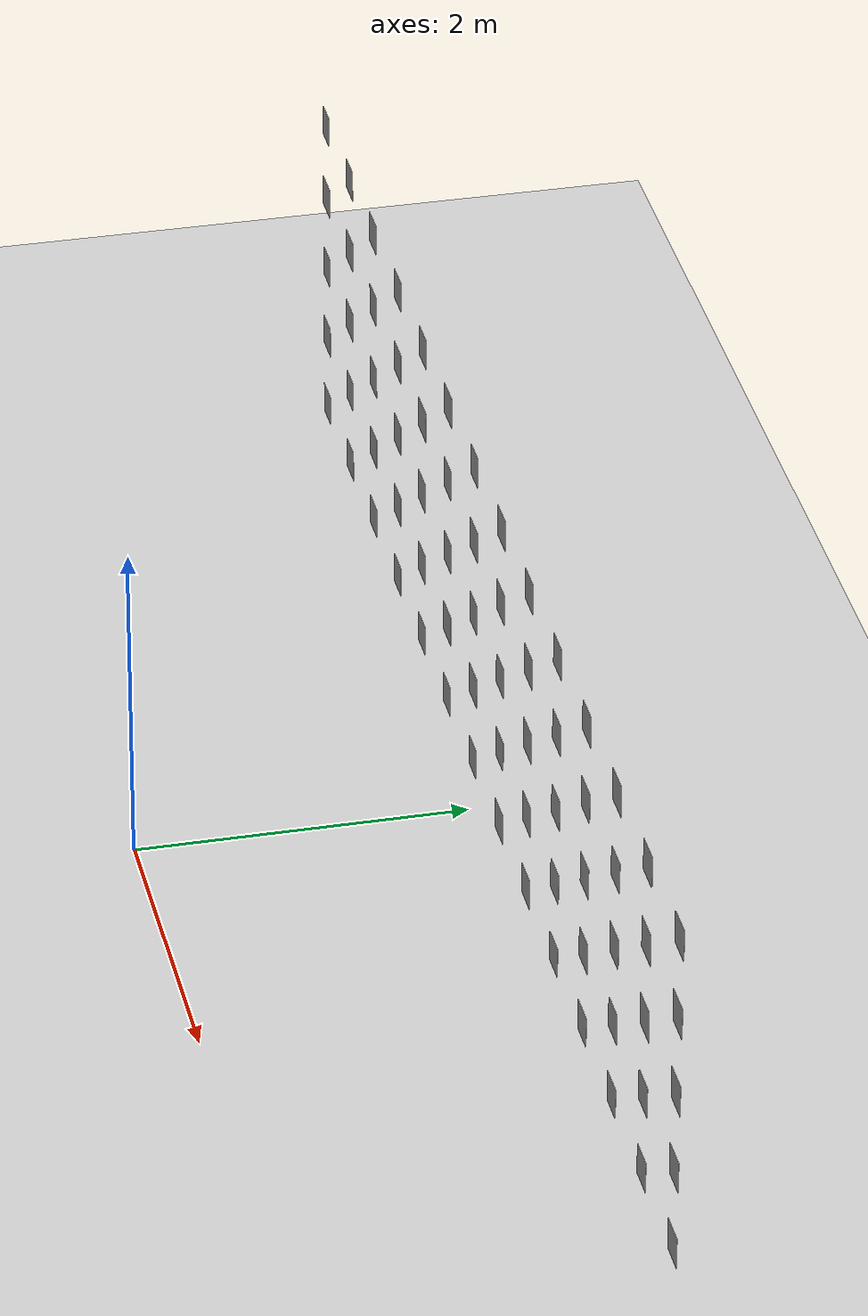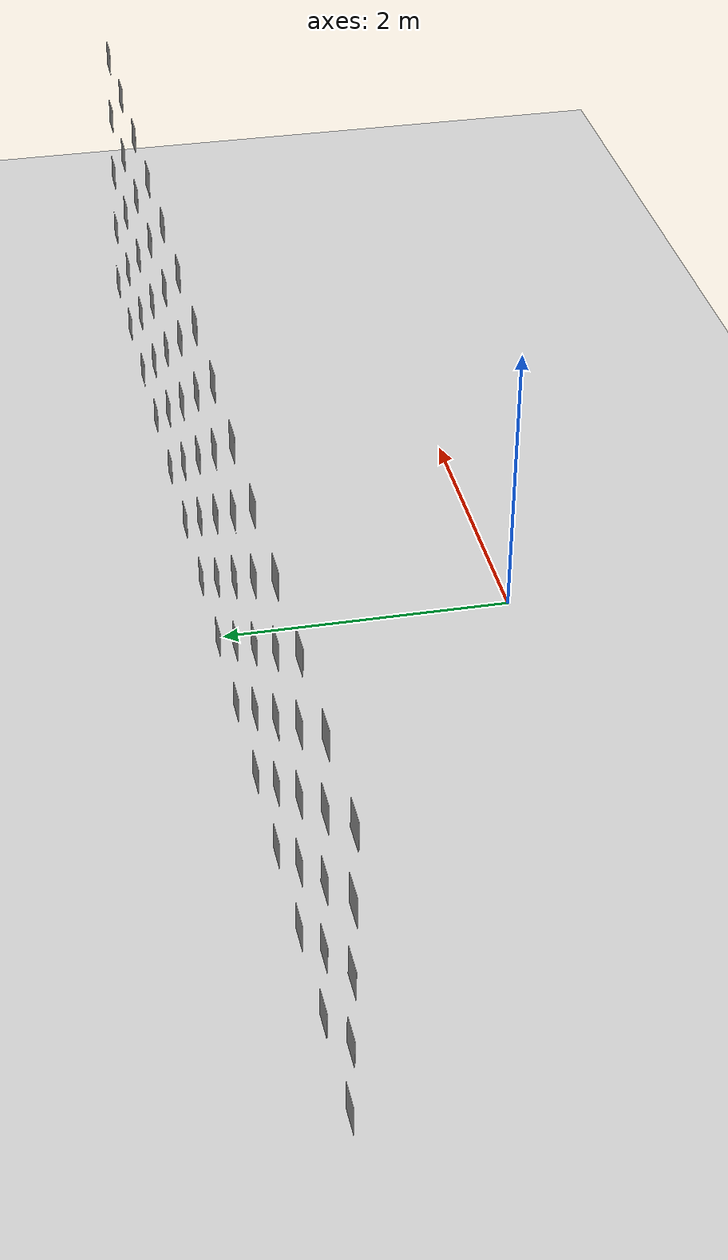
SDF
<sdf version="1.6">
 <world name="default">
  <model name="ground_plane">
   <static>1</static>
   <link name="link">
    <collision name="collision">
     <geometry><plane><normal>0 0 1</normal><size>100 100</size></plane></geometry>
     <surface><friction><ode><mu>100</mu><mu2>50</mu2></ode></friction></surface>
    </collision>
    <visual name="visual">
     <cast_shadows>0</cast_shadows>
     <geometry><plane><normal>0 0 1</normal><size>100 100</size></plane></geometry>
     <material>
      <script><uri>file://media/materials/scripts/gazebo.material</uri><name>Gazebo/Grey</name></script>
     </material>
    </visual>
   </link>
  </model>
  <model name="home1_tag3">
   <model name="aruco100">
    <static>1</static>
    <link name="link">
     <pose>0 0 0.1 0 -0 0</pose>
     <collision name="collision"><geometry><box><size>0.2 0.001 0.2</size></box></geometry></collision>
     <visual name="visual">
      <cast_shadows>0</cast_shadows>
      <geometry><box><size>0.2 0.001 0.2</size></box></geometry>
      <material>
       <script>
        <uri>model://aruco100/materials/scripts</uri>
        <uri>model://aruco100/materials/textures</uri>
        <name>vrc/aruco100</name>
       </script>
      </material>
     </visual>
    </link>
    <pose>0 2 0.1 0 -0 0</pose>
   </model>
   <model name="aruco101">
    <static>1</static>
    <link name="link">
     <pose>0 0 0.1 0 -0 0</pose>
     <collision name="collision"><geometry><box><size>0.2 0.001 0.2</size></box></geometry></collision>
     <visual name="visual">
      <cast_shadows>0</cast_shadows>
      <geometry><box><size>0.2 0.001 0.2</size></box></geometry>
      <material>
       <script>
        <uri>model://aruco101/materials/scripts</uri>
        <uri>model://aruco101/materials/textures</uri>
        <name>vrc/aruco101</name>
       </script>
      </material>
     </visual>
    </link>
    <pose>0.7 2 0.1 0 -0 0</pose>
   </model>
   <model name="aruco102">
    <static>1</static>
    <link name="link">
     <pose>0 0 0.1 0 -0 0</pose>
     <collision name="collision"><geometry><box><size>0.2 0.001 0.2</size></box></geometry></collision>
     <visual name="visual">
      <cast_shadows>0</cast_shadows>
      <geometry><box><size>0.2 0.001 0.2</size></box></geometry>
      <material>
       <script>
        <uri>model://aruco102/materials/scripts</uri>
        <uri>model://aruco102/materials/textures</uri>
        <name>vrc/aruco102</name>
       </script>
      </material>
     </visual>
    </link>
    <pose>1.4 2 0.1 0 -0 0</pose>
   </model>
   <model name="aruco103">
    <static>1</static>
    <link name="link">
     <pose>0 0 0.1 0 -0 0</pose>
     <collision name="collision"><geometry><box><size>0.2 0.001 0.2</size></box></geometry></collision>
     <visual name="visual">
      <cast_shadows>0</cast_shadows>
      <geometry><box><size>0.2 0.001 0.2</size></box></geometry>
      <material>
       <script>
        <uri>model://aruco103/materials/scripts</uri>
        <uri>model://aruco103/materials/textures</uri>
        <name>vrc/aruco103</name>
       </script>
      </material>
     </visual>
    </link>
    <pose>2.1 2 0.1 0 -0 0</pose>
   </model>
   <model name="aruco104">
    <static>1</static>
    <link name="link">
     <pose>0 0 0.1 0 -0 0</pose>
     <collision name="collision"><geometry><box><size>0.2 0.001 0.2</size></box></geometry></collision>
     <visual name="visual">
      <cast_shadows>0</cast_shadows>
      <geometry><box><size>0.2 0.001 0.2</size></box></geometry>
      <material>
       <script>
        <uri>model://aruco104/materials/scripts</uri>
        <uri>model://aruco104/materials/textures</uri>
        <name>vrc/aruco104</name>
       </script>
      </material>
     </visual>
    </link>
    <pose>2.8 2 0.1 0 -0 0</pose>
   </model>
   <model name="aruco105">
    <static>1</static>
    <link name="link">
     <pose>0 0 0.1 0 -0 0</pose>
     <collision name="collision"><geometry><box><size>0.2 0.001 0.2</size></box></geometry></collision>
     <visual name="visual">
      <cast_shadows>0</cast_shadows>
      <geometry><box><size>0.2 0.001 0.2</size></box></geometry>
      <material>
       <script>
        <uri>model://aruco105/materials/scripts</uri>
        <uri>model://aruco105/materials/textures</uri>
        <name>vrc/aruco105</name>
       </script>
      </material>
     </visual>
    </link>
    <pose>3.5 2 0.1 0 -0 0</pose>
   </model>
   <model name="aruco106">
    <static>1</static>
    <link name="link">
     <pose>0 0 0.1 0 -0 0</pose>
     <collision name="collision"><geometry><box><size>0.2 0.001 0.2</size></box></geometry></collision>
     <visual name="visual">
      <cast_shadows>0</cast_shadows>
      <geometry><box><size>0.2 0.001 0.2</size></box></geometry>
      <material>
       <script>
        <uri>model://aruco106/materials/scripts</uri>
        <uri>model://aruco106/materials/textures</uri>
        <name>vrc/aruco106</name>
       </script>
      </material>
     </visual>
    </link>
    <pose>4.2 2 0.1 0 -0 0</pose>
   </model>
   <model name="aruco107">
    <static>1</static>
    <link name="link">
     <pose>0 0 0.1 0 -0 0</pose>
     <collision name="collision"><geometry><box><size>0.2 0.001 0.2</size></box></geometry></collision>
     <visual name="visual">
      <cast_shadows>0</cast_shadows>
      <geometry><box><size>0.2 0.001 0.2</size></box></geometry>
      <material>
       <script>
        <uri>model://aruco107/materials/scripts</uri>
        <uri>model://aruco107/materials/textures</uri>
        <name>vrc/aruco107</name>
       </script>
      </material>
     </visual>
    </link>
    <pose>4.9 2 0.1 0 -0 0</pose>
   </model>
   <model name="aruco108">
    <static>1</static>
    <link name="link">
     <pose>0 0 0.1 0 -0 0</pose>
     <collision name="collision"><geometry><box><size>0.2 0.001 0.2</size></box></geometry></collision>
     <visual name="visual">
      <cast_shadows>0</cast_shadows>
      <geometry><box><size>0.2 0.001 0.2</size></box></geometry>
      <material>
       <script>
        <uri>model://aruco108/materials/scripts</uri>
        <uri>model://aruco108/materials/textures</uri>
        <name>vrc/aruco108</name>
       </script>
      </material>
     </visual>
    </link>
    <pose>5.6 2 0.1 0 -0 0</pose>
   </model>
   <model name="aruco109">
    <static>1</static>
    <link name="link">
     <pose>0 0 0.1 0 -0 0</pose>
     <collision name="collision"><geometry><box><size>0.2 0.001 0.2</size></box></geometry></collision>
     <visual name="visual">
      <cast_shadows>0</cast_shadows>
      <geometry><box><size>0.2 0.001 0.2</size></box></geometry>
      <material>
       <script>
        <uri>model://aruco109/materials/scripts</uri>
        <uri>model://aruco109/materials/textures</uri>
        <name>vrc/aruco109</name>
       </script>
      </material>
     </visual>
    </link>
    <pose>6.3 2 0.1 0 -0 0</pose>
   </model>
   <model name="aruco110">
    <static>1</static>
    <link name="link">
     <pose>0 0 0.1 0 -0 0</pose>
     <collision name="collision"><geometry><box><size>0.2 0.001 0.2</size></box></geometry></collision>
     <visual name="visual">
      <cast_shadows>0</cast_shadows>
      <geometry><box><size>0.2 0.001 0.2</size></box></geometry>
      <material>
       <script>
        <uri>model://aruco110/materials/scripts</uri>
        <uri>model://aruco110/materials/textures</uri>
        <name>vrc/aruco110</name>
       </script>
      </material>
     </visual>
    </link>
    <pose>7 2 0.1 0 -0 0</pose>
   </model>
   <model name="aruco111">
    <static>1</static>
    <link name="link">
     <pose>0 0 0.1 0 -0 0</pose>
     <collision name="collision"><geometry><box><size>0.2 0.001 0.2</size></box></geometry></collision>
     <visual name="visual">
      <cast_shadows>0</cast_shadows>
      <geometry><box><size>0.2 0.001 0.2</size></box></geometry>
      <material>
       <script>
        <uri>model://aruco111/materials/scripts</uri>
        <uri>model://aruco111/materials/textures</uri>
        <name>vrc/aruco111</name>
       </script>
      </material>
     </visual>
    </link>
    <pose>7.7 2 0.1 0 -0 0</pose>
   </model>
   <model name="aruco112">
    <static>1</static>
    <link name="link">
     <pose>0 0 0.1 0 -0 0</pose>
     <collision name="collision"><geometry><box><size>0.2 0.001 0.2</size></box></geometry></collision>
     <visual name="visual">
      <cast_shadows>0</cast_shadows>
      <geometry><box><size>0.2 0.001 0.2</size></box></geometry>
      <material>
       <script>
        <uri>model://aruco112/materials/scripts</uri>
        <uri>model://aruco112/materials/textures</uri>
        <name>vrc/aruco112</name>
       </script>
      </material>
     </visual>
    </link>
    <pose>8.4 2 0.1 0 -0 0</pose>
   </model>
   <model name="aruco113">
    <static>1</static>
    <link name="link">
     <pose>0 0 0.1 0 -0 0</pose>
     <collision name="collision"><geometry><box><size>0.2 0.001 0.2</size></box></geometry></collision>
     <visual name="visual">
      <cast_shadows>0</cast_shadows>
      <geometry><box><size>0.2 0.001 0.2</size></box></geometry>
      <material>
       <script>
        <uri>model://aruco113/materials/scripts</uri>
        <uri>model://aruco113/materials/textures</uri>
        <name>vrc/aruco113</name>
       </script>
      </material>
     </visual>
    </link>
    <pose>9.1 2 0.1 0 -0 0</pose>
   </model>
   <model name="aruco114">
    <static>1</static>
    <link name="link">
     <pose>0 0 0.1 0 -0 0</pose>
     <collision name="collision"><geometry><box><size>0.2 0.001 0.2</size></box></geometry></collision>
     <visual name="visual">
      <cast_shadows>0</cast_shadows>
      <geometry><box><size>0.2 0.001 0.2</size></box></geometry>
      <material>
       <script>
        <uri>model://aruco114/materials/scripts</uri>
        <uri>model://aruco114/materials/textures</uri>
        <name>vrc/aruco114</name>
       </script>
      </material>
     </visual>
    </link>
    <pose>0 2 0.6 0 -0 0</pose>
   </model>
   <model name="aruco115">
    <static>1</static>
    <link name="link">
     <pose>0 0 0.1 0 -0 0</pose>
     <collision name="collision"><geometry><box><size>0.2 0.001 0.2</size></box></geometry></collision>
     <visual name="visual">
      <cast_shadows>0</cast_shadows>
      <geometry><box><size>0.2 0.001 0.2</size></box></geometry>
      <material>
       <script>
        <uri>model://aruco115/materials/scripts</uri>
        <uri>model://aruco115/materials/textures</uri>
        <name>vrc/aruco115</name>
       </script>
      </material>
     </visual>
    </link>
    <pose>0.7 2 0.6 0 -0 0</pose>
   </model>
   <model name="aruco116">
    <static>1</static>
    <link name="link">
     <pose>0 0 0.1 0 -0 0</pose>
     <collision name="collision"><geometry><box><size>0.2 0.001 0.2</size></box></geometry></collision>
     <visual name="visual">
      <cast_shadows>0</cast_shadows>
      <geometry><box><size>0.2 0.001 0.2</size></box></geometry>
      <material>
       <script>
        <uri>model://aruco116/materials/scripts</uri>
        <uri>model://aruco116/materials/textures</uri>
        <name>vrc/aruco116</name>
       </script>
      </material>
     </visual>
    </link>
    <pose>1.4 2 0.6 0 -0 0</pose>
   </model>
   <model name="aruco117">
    <static>1</static>
    <link name="link">
     <pose>0 0 0.1 0 -0 0</pose>
     <collision name="collision"><geometry><box><size>0.2 0.001 0.2</size></box></geometry></collision>
     <visual name="visual">
      <cast_shadows>0</cast_shadows>
      <geometry><box><size>0.2 0.001 0.2</size></box></geometry>
      <material>
       <script>
        <uri>model://aruco117/materials/scripts</uri>
        <uri>model://aruco117/materials/textures</uri>
        <name>vrc/aruco117</name>
       </script>
      </material>
     </visual>
    </link>
    <pose>2.1 2 0.6 0 -0 0</pose>
   </model>
   <model name="aruco118">
    <static>1</static>
    <link name="link">
     <pose>0 0 0.1 0 -0 0</pose>
     <collision name="collision"><geometry><box><size>0.2 0.001 0.2</size></box></geometry></collision>
     <visual name="visual">
      <cast_shadows>0</cast_shadows>
      <geometry><box><size>0.2 0.001 0.2</size></box></geometry>
      <material>
       <script>
        <uri>model://aruco118/materials/scripts</uri>
        <uri>model://aruco118/materials/textures</uri>
        <name>vrc/aruco118</name>
       </script>
      </material>
     </visual>
    </link>
    <pose>2.8 2 0.6 0 -0 0</pose>
   </model>
   <model name="aruco119">
    <static>1</static>
    <link name="link">
     <pose>0 0 0.1 0 -0 0</pose>
     <collision name="collision"><geometry><box><size>0.2 0.001 0.2</size></box></geometry></collision>
     <visual name="visual">
      <cast_shadows>0</cast_shadows>
      <geometry><box><size>0.2 0.001 0.2</size></box></geometry>
      <material>
       <script>
        <uri>model://aruco119/materials/scripts</uri>
        <uri>model://aruco119/materials/textures</uri>
        <name>vrc/aruco119</name>
       </script>
      </material>
     </visual>
    </link>
    <pose>3.5 2 0.6 0 -0 0</pose>
   </model>
   <model name="aruco120">
    <static>1</static>
    <link name="link">
     <pose>0 0 0.1 0 -0 0</pose>
     <collision name="collision"><geometry><box><size>0.2 0.001 0.2</size></box></geometry></collision>
     <visual name="visual">
      <cast_shadows>0</cast_shadows>
      <geometry><box><size>0.2 0.001 0.2</size></box></geometry>
      <material>
       <script>
        <uri>model://aruco120/materials/scripts</uri>
        <uri>model://aruco120/materials/textures</uri>
        <name>vrc/aruco120</name>
       </script>
      </material>
     </visual>
    </link>
    <pose>4.2 2 0.6 0 -0 0</pose>
   </model>
   <model name="aruco121">
    <static>1</static>
    <link name="link">
     <pose>0 0 0.1 0 -0 0</pose>
     <collision name="collision"><geometry><box><size>0.2 0.001 0.2</size></box></geometry></collision>
     <visual name="visual">
      <cast_shadows>0</cast_shadows>
      <geometry><box><size>0.2 0.001 0.2</size></box></geometry>
      <material>
       <script>
        <uri>model://aruco121/materials/scripts</uri>
        <uri>model://aruco121/materials/textures</uri>
        <name>vrc/aruco121</name>
       </script>
      </material>
     </visual>
    </link>
    <pose>4.9 2 0.6 0 -0 0</pose>
   </model>
   <model name="aruco122">
    <static>1</static>
    <link name="link">
     <pose>0 0 0.1 0 -0 0</pose>
     <collision name="collision"><geometry><box><size>0.2 0.001 0.2</size></box></geometry></collision>
     <visual name="visual">
      <cast_shadows>0</cast_shadows>
      <geometry><box><size>0.2 0.001 0.2</size></box></geometry>
      <material>
       <script>
        <uri>model://aruco122/materials/scripts</uri>
        <uri>model://aruco122/materials/textures</uri>
        <name>vrc/aruco122</name>
       </script>
      </material>
     </visual>
    </link>
    <pose>5.6 2 0.6 0 -0 0</pose>
   </model>
   <model name="aruco123">
    <static>1</static>
    <link name="link">
     <pose>0 0 0.1 0 -0 0</pose>
     <collision name="collision"><geometry><box><size>0.2 0.001 0.2</size></box></geometry></collision>
     <visual name="visual">
      <cast_shadows>0</cast_shadows>
      <geometry><box><size>0.2 0.001 0.2</size></box></geometry>
      <material>
       <script>
        <uri>model://aruco123/materials/scripts</uri>
        <uri>model://aruco123/materials/textures</uri>
        <name>vrc/aruco123</name>
       </script>
      </material>
     </visual>
    </link>
    <pose>6.3 2 0.6 0 -0 0</pose>
   </model>
   <model name="aruco124">
    <static>1</static>
    <link name="link">
     <pose>0 0 0.1 0 -0 0</pose>
     <collision name="collision"><geometry><box><size>0.2 0.001 0.2</size></box></geometry></collision>
     <visual name="visual">
      <cast_shadows>0</cast_shadows>
      <geometry><box><size>0.2 0.001 0.2</size></box></geometry>
      <material>
       <script>
        <uri>model://aruco124/materials/scripts</uri>
        <uri>model://aruco124/materials/textures</uri>
        <name>vrc/aruco124</name>
       </script>
      </material>
     </visual>
    </link>
    <pose>7 2 0.6 0 -0 0</pose>
   </model>
   <model name="aruco125">
    <static>1</static>
    <link name="link">
     <pose>0 0 0.1 0 -0 0</pose>
     <collision name="collision"><geometry><box><size>0.2 0.001 0.2</size></box></geometry></collision>
     <visual name="visual">
      <cast_shadows>0</cast_shadows>
      <geometry><box><size>0.2 0.001 0.2</size></box></geometry>
      <material>
       <script>
        <uri>model://aruco125/materials/scripts</uri>
        <uri>model://aruco125/materials/textures</uri>
        <name>vrc/aruco125</name>
       </script>
      </material>
     </visual>
    </link>
    <pose>7.7 2 0.6 0 -0 0</pose>
   </model>
   <model name="aruco126">
    <static>1</static>
    <link name="link">
     <pose>0 0 0.1 0 -0 0</pose>
     <collision name="collision"><geometry><box><size>0.2 0.001 0.2</size></box></geometry></collision>
     <visual name="visual">
      <cast_shadows>0</cast_shadows>
      <geometry><box><size>0.2 0.001 0.2</size></box></geometry>
      <material>
       <script>
        <uri>model://aruco126/materials/scripts</uri>
        <uri>model://aruco126/materials/textures</uri>
        <name>vrc/aruco126</name>
       </script>
      </material>
     </visual>
    </link>
    <pose>8.4 2 0.6 0 -0 0</pose>
   </model>
   <model name="aruco127">
    <static>1</static>
    <link name="link">
     <pose>0 0 0.1 0 -0 0</pose>
     <collision name="collision"><geometry><box><size>0.2 0.001 0.2</size></box></geometry></collision>
     <visual name="visual">
      <cast_shadows>0</cast_shadows>
      <geometry><box><size>0.2 0.001 0.2</size></box></geometry>
      <material>
       <script>
        <uri>model://aruco127/materials/scripts</uri>
        <uri>model://aruco127/materials/textures</uri>
        <name>vrc/aruco127</name>
       </script>
      </material>
     </visual>
    </link>
    <pose>9.1 2 0.6 0 -0 0</pose>
   </model>
   <model name="aruco128">
    <static>1</static>
    <link name="link">
     <pose>0 0 0.1 0 -0 0</pose>
     <collision name="collision"><geometry><box><size>0.2 0.001 0.2</size></box></geometry></collision>
     <visual name="visual">
      <cast_shadows>0</cast_shadows>
      <geometry><box><size>0.2 0.001 0.2</size></box></geometry>
      <material>
       <script>
        <uri>model://aruco128/materials/scripts</uri>
        <uri>model://aruco128/materials/textures</uri>
        <name>vrc/aruco128</name>
       </script>
      </material>
     </visual>
    </link>
    <pose>0 2 1.1 0 -0 0</pose>
   </model>
   <model name="aruco129">
    <static>1</static>
    <link name="link">
     <pose>0 0 0.1 0 -0 0</pose>
     <collision name="collision"><geometry><box><size>0.2 0.001 0.2</size></box></geometry></collision>
     <visual name="visual">
      <cast_shadows>0</cast_shadows>
      <geometry><box><size>0.2 0.001 0.2</size></box></geometry>
      <material>
       <script>
        <uri>model://aruco129/materials/scripts</uri>
        <uri>model://aruco129/materials/textures</uri>
        <name>vrc/aruco129</name>
       </script>
      </material>
     </visual>
    </link>
    <pose>0.7 2 1.1 0 -0 0</pose>
   </model>
   <model name="aruco130">
    <static>1</static>
    <link name="link">
     <pose>0 0 0.1 0 -0 0</pose>
     <collision name="collision"><geometry><box><size>0.2 0.001 0.2</size></box></geometry></collision>
     <visual name="visual">
      <cast_shadows>0</cast_shadows>
      <geometry><box><size>0.2 0.001 0.2</size></box></geometry>
      <material>
       <script>
        <uri>model://aruco130/materials/scripts</uri>
        <uri>model://aruco130/materials/textures</uri>
        <name>vrc/aruco130</name>
       </script>
      </material>
     </visual>
    </link>
    <pose>1.4 2 1.1 0 -0 0</pose>
   </model>
   <model name="aruco131">
    <static>1</static>
    <link name="link">
     <pose>0 0 0.1 0 -0 0</pose>
     <collision name="collision"><geometry><box><size>0.2 0.001 0.2</size></box></geometry></collision>
     <visual name="visual">
      <cast_shadows>0</cast_shadows>
      <geometry><box><size>0.2 0.001 0.2</size></box></geometry>
      <material>
       <script>
        <uri>model://aruco131/materials/scripts</uri>
        <uri>model://aruco131/materials/textures</uri>
        <name>vrc/aruco131</name>
       </script>
      </material>
     </visual>
    </link>
    <pose>2.1 2 1.1 0 -0 0</pose>
   </model>
   <model name="aruco132">
    <static>1</static>
    <link name="link">
     <pose>0 0 0.1 0 -0 0</pose>
     <collision name="collision"><geometry><box><size>0.2 0.001 0.2</size></box></geometry></collision>
     <visual name="visual">
      <cast_shadows>0</cast_shadows>
      <geometry><box><size>0.2 0.001 0.2</size></box></geometry>
      <material>
       <script>
        <uri>model://aruco132/materials/scripts</uri>
        <uri>model://aruco132/materials/textures</uri>
        <name>vrc/aruco132</name>
       </script>
      </material>
     </visual>
    </link>
    <pose>2.8 2 1.1 0 -0 0</pose>
   </model>
   <model name="aruco133">
    <static>1</static>
    <link name="link">
     <pose>0 0 0.1 0 -0 0</pose>
     <collision name="collision"><geometry><box><size>0.2 0.001 0.2</size></box></geometry></collision>
     <visual name="visual">
      <cast_shadows>0</cast_shadows>
      <geometry><box><size>0.2 0.001 0.2</size></box></geometry>
      <material>
       <script>
        <uri>model://aruco133/materials/scripts</uri>
        <uri>model://aruco133/materials/textures</uri>
        <name>vrc/aruco133</name>
       </script>
      </material>
     </visual>
    </link>
    <pose>3.5 2 1.1 0 -0 0</pose>
   </model>
   <model name="aruco134">
    <static>1</static>
    <link name="link">
     <pose>0 0 0.1 0 -0 0</pose>
     <collision name="collision"><geometry><box><size>0.2 0.001 0.2</size></box></geometry></collision>
     <visual name="visual">
      <cast_shadows>0</cast_shadows>
      <geometry><box><size>0.2 0.001 0.2</size></box></geometry>
      <material>
       <script>
        <uri>model://aruco134/materials/scripts</uri>
        <uri>model://aruco134/materials/textures</uri>
        <name>vrc/aruco134</name>
       </script>
      </material>
     </visual>
    </link>
    <pose>4.2 2 1.1 0 -0 0</pose>
   </model>
   <model name="aruco135">
    <static>1</static>
    <link name="link">
     <pose>0 0 0.1 0 -0 0</pose>
     <collision name="collision"><geometry><box><size>0.2 0.001 0.2</size></box></geometry></collision>
     <visual name="visual">
      <cast_shadows>0</cast_shadows>
      <geometry><box><size>0.2 0.001 0.2</size></box></geometry>
      <material>
       <script>
        <uri>model://aruco135/materials/scripts</uri>
        <uri>model://aruco135/materials/textures</uri>
        <name>vrc/aruco135</name>
       </script>
      </material>
     </visual>
    </link>
    <pose>4.9 2 1.1 0 -0 0</pose>
   </model>
   <model name="aruco136">
    <static>1</static>
    <link name="link">
     <pose>0 0 0.1 0 -0 0</pose>
     <collision name="collision"><geometry><box><size>0.2 0.001 0.2</size></box></geometry></collision>
     <visual name="visual">
      <cast_shadows>0</cast_shadows>
      <geometry><box><size>0.2 0.001 0.2</size></box></geometry>
      <material>
       <script>
        <uri>model://aruco136/materials/scripts</uri>
        <uri>model://aruco136/materials/textures</uri>
        <name>vrc/aruco136</name>
       </script>
      </material>
     </visual>
    </link>
    <pose>5.6 2 1.1 0 -0 0</pose>
   </model>
   <model name="aruco137">
    <static>1</static>
    <link name="link">
     <pose>0 0 0.1 0 -0 0</pose>
     <collision name="collision"><geometry><box><size>0.2 0.001 0.2</size></box></geometry></collision>
     <visual name="visual">
      <cast_shadows>0</cast_shadows>
      <geometry><box><size>0.2 0.001 0.2</size></box></geometry>
      <material>
       <script>
        <uri>model://aruco137/materials/scripts</uri>
        <uri>model://aruco137/materials/textures</uri>
        <name>vrc/aruco137</name>
       </script>
      </material>
     </visual>
    </link>
    <pose>6.3 2 1.1 0 -0 0</pose>
   </model>
   <model name="aruco138">
    <static>1</static>
    <link name="link">
     <pose>0 0 0.1 0 -0 0</pose>
     <collision name="collision"><geometry><box><size>0.2 0.001 0.2</size></box></geometry></collision>
     <visual name="visual">
      <cast_shadows>0</cast_shadows>
      <geometry><box><size>0.2 0.001 0.2</size></box></geometry>
      <material>
       <script>
        <uri>model://aruco138/materials/scripts</uri>
        <uri>model://aruco138/materials/textures</uri>
        <name>vrc/aruco138</name>
       </script>
      </material>
     </visual>
    </link>
    <pose>7 2 1.1 0 -0 0</pose>
   </model>
   <model name="aruco139">
    <static>1</static>
    <link name="link">
     <pose>0 0 0.1 0 -0 0</pose>
     <collision name="collision"><geometry><box><size>0.2 0.001 0.2</size></box></geometry></collision>
     <visual name="visual">
      <cast_shadows>0</cast_shadows>
      <geometry><box><size>0.2 0.001 0.2</size></box></geometry>
      <material>
       <script>
        <uri>model://aruco139/materials/scripts</uri>
        <uri>model://aruco139/materials/textures</uri>
        <name>vrc/aruco139</name>
       </script>
      </material>
     </visual>
    </link>
    <pose>7.7 2 1.1 0 -0 0</pose>
   </model>
   <model name="aruco140">
    <static>1</static>
    <link name="link">
     <pose>0 0 0.1 0 -0 0</pose>
     <collision name="collision"><geometry><box><size>0.2 0.001 0.2</size></box></geometry></collision>
     <visual name="visual">
      <cast_shadows>0</cast_shadows>
      <geometry><box><size>0.2 0.001 0.2</size></box></geometry>
      <material>
       <script>
        <uri>model://aruco140/materials/scripts</uri>
        <uri>model://aruco140/materials/textures</uri>
        <name>vrc/aruco140</name>
       </script>
      </material>
     </visual>
    </link>
    <pose>8.4 2 1.1 0 -0 0</pose>
   </model>
   <model name="aruco141">
    <static>1</static>
    <link name="link">
     <pose>0 0 0.1 0 -0 0</pose>
     <collision name="collision"><geometry><box><size>0.2 0.001 0.2</size></box></geometry></collision>
     <visual name="visual">
      <cast_shadows>0</cast_shadows>
      <geometry><box><size>0.2 0.001 0.2</size></box></geometry>
      <material>
       <script>
        <uri>model://aruco141/materials/scripts</uri>
        <uri>model://aruco141/materials/textures</uri>
        <name>vrc/aruco141</name>
       </script>
      </material>
     </visual>
    </link>
    <pose>9.1 2 1.1 0 -0 0</pose>
   </model>
   <model name="aruco142">
    <static>1</static>
    <link name="link">
     <pose>0 0 0.1 0 -0 0</pose>
     <collision name="collision"><geometry><box><size>0.2 0.001 0.2</size></box></geometry></collision>
     <visual name="visual">
      <cast_shadows>0</cast_shadows>
      <geometry><box><size>0.2 0.001 0.2</size></box></geometry>
      <material>
       <script>
        <uri>model://aruco142/materials/scripts</uri>
        <uri>model://aruco142/materials/textures</uri>
        <name>vrc/aruco142</name>
       </script>
      </material>
     </visual>
    </link>
    <pose>0 2 1.6 0 -0 0</pose>
   </model>
   <model name="aruco143">
    <static>1</static>
    <link name="link">
     <pose>0 0 0.1 0 -0 0</pose>
     <collision name="collision"><geometry><box><size>0.2 0.001 0.2</size></box></geometry></collision>
     <visual name="visual">
      <cast_shadows>0</cast_shadows>
      <geometry><box><size>0.2 0.001 0.2</size></box></geometry>
      <material>
       <script>
        <uri>model://aruco143/materials/scripts</uri>
        <uri>model://aruco143/materials/textures</uri>
        <name>vrc/aruco143</name>
       </script>
      </material>
     </visual>
    </link>
    <pose>0.7 2 1.6 0 -0 0</pose>
   </model>
   <model name="aruco144">
    <static>1</static>
    <link name="link">
     <pose>0 0 0.1 0 -0 0</pose>
     <collision name="collision"><geometry><box><size>0.2 0.001 0.2</size></box></geometry></collision>
     <visual name="visual">
      <cast_shadows>0</cast_shadows>
      <geometry><box><size>0.2 0.001 0.2</size></box></geometry>
      <material>
       <script>
        <uri>model://aruco144/materials/scripts</uri>
        <uri>model://aruco144/materials/textures</uri>
        <name>vrc/aruco144</name>
       </script>
      </material>
     </visual>
    </link>
    <pose>1.4 2 1.6 0 -0 0</pose>
   </model>
   <model name="aruco145">
    <static>1</static>
    <link name="link">
     <pose>0 0 0.1 0 -0 0</pose>
     <collision name="collision"><geometry><box><size>0.2 0.001 0.2</size></box></geometry></collision>
     <visual name="visual">
      <cast_shadows>0</cast_shadows>
      <geometry><box><size>0.2 0.001 0.2</size></box></geometry>
      <material>
       <script>
        <uri>model://aruco145/materials/scripts</uri>
        <uri>model://aruco145/materials/textures</uri>
        <name>vrc/aruco145</name>
       </script>
      </material>
     </visual>
    </link>
    <pose>2.1 2 1.6 0 -0 0</pose>
   </model>
   <model name="aruco146">
    <static>1</static>
    <link name="link">
     <pose>0 0 0.1 0 -0 0</pose>
     <collision name="collision"><geometry><box><size>0.2 0.001 0.2</size></box></geometry></collision>
     <visual name="visual">
      <cast_shadows>0</cast_shadows>
      <geometry><box><size>0.2 0.001 0.2</size></box></geometry>
      <material>
       <script>
        <uri>model://aruco146/materials/scripts</uri>
        <uri>model://aruco146/materials/textures</uri>
        <name>vrc/aruco146</name>
       </script>
      </material>
     </visual>
    </link>
    <pose>2.8 2 1.6 0 -0 0</pose>
   </model>
   <model name="aruco147">
    <static>1</static>
    <link name="link">
     <pose>0 0 0.1 0 -0 0</pose>
     <collision name="collision"><geometry><box><size>0.2 0.001 0.2</size></box></geometry></collision>
     <visual name="visual">
      <cast_shadows>0</cast_shadows>
      <geometry><box><size>0.2 0.001 0.2</size></box></geometry>
      <material>
       <script>
        <uri>model://aruco147/materials/scripts</uri>
        <uri>model://aruco147/materials/textures</uri>
        <name>vrc/aruco147</name>
       </script>
      </material>
     </visual>
    </link>
    <pose>3.5 2 1.6 0 -0 0</pose>
   </model>
   <model name="aruco148">
    <static>1</static>
    <link name="link">
     <pose>0 0 0.1 0 -0 0</pose>
     <collision name="collision"><geometry><box><size>0.2 0.001 0.2</size></box></geometry></collision>
     <visual name="visual">
      <cast_shadows>0</cast_shadows>
      <geometry><box><size>0.2 0.001 0.2</size></box></geometry>
      <material>
       <script>
        <uri>model://aruco148/materials/scripts</uri>
        <uri>model://aruco148/materials/textures</uri>
        <name>vrc/aruco148</name>
       </script>
      </material>
     </visual>
    </link>
    <pose>4.2 2 1.6 0 -0 0</pose>
   </model>
   <model name="aruco149">
    <static>1</static>
    <link name="link">
     <pose>0 0 0.1 0 -0 0</pose>
     <collision name="collision"><geometry><box><size>0.2 0.001 0.2</size></box></geometry></collision>
     <visual name="visual">
      <cast_shadows>0</cast_shadows>
      <geometry><box><size>0.2 0.001 0.2</size></box></geometry>
      <material>
       <script>
        <uri>model://aruco149/materials/scripts</uri>
        <uri>model://aruco149/materials/textures</uri>
        <name>vrc/aruco149</name>
       </script>
      </material>
     </visual>
    </link>
    <pose>4.9 2 1.6 0 -0 0</pose>
   </model>
   <model name="aruco150">
    <static>1</static>
    <link name="link">
     <pose>0 0 0.1 0 -0 0</pose>
     <collision name="collision"><geometry><box><size>0.2 0.001 0.2</size></box></geometry></collision>
     <visual name="visual">
      <cast_shadows>0</cast_shadows>
      <geometry><box><size>0.2 0.001 0.2</size></box></geometry>
      <material>
       <script>
        <uri>model://aruco150/materials/scripts</uri>
        <uri>model://aruco150/materials/textures</uri>
        <name>vrc/aruco150</name>
       </script>
      </material>
     </visual>
    </link>
    <pose>5.6 2 1.6 0 -0 0</pose>
   </model>
   <model name="aruco151">
    <static>1</static>
    <link name="link">
     <pose>0 0 0.1 0 -0 0</pose>
     <collision name="collision"><geometry><box><size>0.2 0.001 0.2</size></box></geometry></collision>
     <visual name="visual">
      <cast_shadows>0</cast_shadows>
      <geometry><box><size>0.2 0.001 0.2</size></box></geometry>
      <material>
       <script>
        <uri>model://aruco151/materials/scripts</uri>
        <uri>model://aruco151/materials/textures</uri>
        <name>vrc/aruco151</name>
       </script>
      </material>
     </visual>
    </link>
    <pose>6.3 2 1.6 0 -0 0</pose>
   </model>
   <model name="aruco152">
    <static>1</static>
    <link name="link">
     <pose>0 0 0.1 0 -0 0</pose>
     <collision name="collision"><geometry><box><size>0.2 0.001 0.2</size></box></geometry></collision>
     <visual name="visual">
      <cast_shadows>0</cast_shadows>
      <geometry><box><size>0.2 0.001 0.2</size></box></geometry>
      <material>
       <script>
        <uri>model://aruco152/materials/scripts</uri>
        <uri>model://aruco152/materials/textures</uri>
        <name>vrc/aruco152</name>
       </script>
      </material>
     </visual>
    </link>
    <pose>7 2 1.6 0 -0 0</pose>
   </model>
   <model name="aruco153">
    <static>1</static>
    <link name="link">
     <pose>0 0 0.1 0 -0 0</pose>
     <collision name="collision"><geometry><box><size>0.2 0.001 0.2</size></box></geometry></collision>
     <visual name="visual">
      <cast_shadows>0</cast_shadows>
      <geometry><box><size>0.2 0.001 0.2</size></box></geometry>
      <material>
       <script>
        <uri>model://aruco153/materials/scripts</uri>
        <uri>model://aruco153/materials/textures</uri>
        <name>vrc/aruco153</name>
       </script>
      </material>
     </visual>
    </link>
    <pose>7.7 2 1.6 0 -0 0</pose>
   </model>
   <model name="aruco154">
    <static>1</static>
    <link name="link">
     <pose>0 0 0.1 0 -0 0</pose>
     <collision name="collision"><geometry><box><size>0.2 0.001 0.2</size></box></geometry></collision>
     <visual name="visual">
      <cast_shadows>0</cast_shadows>
      <geometry><box><size>0.2 0.001 0.2</size></box></geometry>
      <material>
       <script>
        <uri>model://aruco154/materials/scripts</uri>
        <uri>model://aruco154/materials/textures</uri>
        <name>vrc/aruco154</name>
       </script>
      </material>
     </visual>
    </link>
    <pose>8.4 2 1.6 0 -0 0</pose>
   </model>
   <model name="aruco155">
    <static>1</static>
    <link name="link">
     <pose>0 0 0.1 0 -0 0</pose>
     <collision name="collision"><geometry><box><size>0.2 0.001 0.2</size></box></geometry></collision>
     <visual name="visual">
      <cast_shadows>0</cast_shadows>
      <geometry><box><size>0.2 0.001 0.2</size></box></geometry>
      <material>
       <script>
        <uri>model://aruco155/materials/scripts</uri>
        <uri>model://aruco155/materials/textures</uri>
        <name>vrc/aruco155</name>
       </script>
      </material>
     </visual>
    </link>
    <pose>9.1 2 1.6 0 -0 0</pose>
   </model>
   <model name="aruco156">
    <static>1</static>
    <link name="link">
     <pose>0 0 0.1 0 -0 0</pose>
     <collision name="collision"><geometry><box><size>0.2 0.001 0.2</size></box></geometry></collision>
     <visual name="visual">
      <cast_shadows>0</cast_shadows>
      <geometry><box><size>0.2 0.001 0.2</size></box></geometry>
      <material>
       <script>
        <uri>model://aruco156/materials/scripts</uri>
        <uri>model://aruco156/materials/textures</uri>
        <name>vrc/aruco156</name>
       </script>
      </material>
     </visual>
    </link>
    <pose>0 2 2.1 0 -0 0</pose>
   </model>
   <model name="aruco157">
    <static>1</static>
    <link name="link">
     <pose>0 0 0.1 0 -0 0</pose>
     <collision name="collision"><geometry><box><size>0.2 0.001 0.2</size></box></geometry></collision>
     <visual name="visual">
      <cast_shadows>0</cast_shadows>
      <geometry><box><size>0.2 0.001 0.2</size></box></geometry>
      <material>
       <script>
        <uri>model://aruco157/materials/scripts</uri>
        <uri>model://aruco157/materials/textures</uri>
        <name>vrc/aruco157</name>
       </script>
      </material>
     </visual>
    </link>
    <pose>0.7 2 2.1 0 -0 0</pose>
   </model>
   <model name="aruco158">
    <static>1</static>
    <link name="link">
     <pose>0 0 0.1 0 -0 0</pose>
     <collision name="collision"><geometry><box><size>0.2 0.001 0.2</size></box></geometry></collision>
     <visual name="visual">
      <cast_shadows>0</cast_shadows>
      <geometry><box><size>0.2 0.001 0.2</size></box></geometry>
      <material>
       <script>
        <uri>model://aruco158/materials/scripts</uri>
        <uri>model://aruco158/materials/textures</uri>
        <name>vrc/aruco158</name>
       </script>
      </material>
     </visual>
    </link>
    <pose>1.4 2 2.1 0 -0 0</pose>
   </model>
   <model name="aruco159">
    <static>1</static>
    <link name="link">
     <pose>0 0 0.1 0 -0 0</pose>
     <collision name="collision"><geometry><box><size>0.2 0.001 0.2</size></box></geometry></collision>
     <visual name="visual">
      <cast_shadows>0</cast_shadows>
      <geometry><box><size>0.2 0.001 0.2</size></box></geometry>
      <material>
       <script>
        <uri>model://aruco159/materials/scripts</uri>
        <uri>model://aruco159/materials/textures</uri>
        <name>vrc/aruco159</name>
       </script>
      </material>
     </visual>
    </link>
    <pose>2.1 2 2.1 0 -0 0</pose>
   </model>
   <model name="aruco160">
    <static>1</static>
    <link name="link">
     <pose>0 0 0.1 0 -0 0</pose>
     <collision name="collision"><geometry><box><size>0.2 0.001 0.2</size></box></geometry></collision>
     <visual name="visual">
      <cast_shadows>0</cast_shadows>
      <geometry><box><size>0.2 0.001 0.2</size></box></geometry>
      <material>
       <script>
        <uri>model://aruco160/materials/scripts</uri>
        <uri>model://aruco160/materials/textures</uri>
        <name>vrc/aruco160</name>
       </script>
      </material>
     </visual>
    </link>
    <pose>2.8 2 2.1 0 -0 0</pose>
   </model>
   <model name="aruco161">
    <static>1</static>
    <link name="link">
     <pose>0 0 0.1 0 -0 0</pose>
     <collision name="collision"><geometry><box><size>0.2 0.001 0.2</size></box></geometry></collision>
     <visual name="visual">
      <cast_shadows>0</cast_shadows>
      <geometry><box><size>0.2 0.001 0.2</size></box></geometry>
      <material>
       <script>
        <uri>model://aruco161/materials/scripts</uri>
        <uri>model://aruco161/materials/textures</uri>
        <name>vrc/aruco161</name>
       </script>
      </material>
     </visual>
    </link>
    <pose>3.5 2 2.1 0 -0 0</pose>
   </model>
   <model name="aruco162">
    <static>1</static>
    <link name="link">
     <pose>0 0 0.1 0 -0 0</pose>
     <collision name="collision"><geometry><box><size>0.2 0.001 0.2</size></box></geometry></collision>
     <visual name="visual">
      <cast_shadows>0</cast_shadows>
      <geometry><box><size>0.2 0.001 0.2</size></box></geometry>
      <material>
       <script>
        <uri>model://aruco162/materials/scripts</uri>
        <uri>model://aruco162/materials/textures</uri>
        <name>vrc/aruco162</name>
       </script>
      </material>
     </visual>
    </link>
    <pose>4.2 2 2.1 0 -0 0</pose>
   </model>
   <model name="aruco163">
    <static>1</static>
    <link name="link">
     <pose>0 0 0.1 0 -0 0</pose>
     <collision name="collision"><geometry><box><size>0.2 0.001 0.2</size></box></geometry></collision>
     <visual name="visual">
      <cast_shadows>0</cast_shadows>
      <geometry><box><size>0.2 0.001 0.2</size></box></geometry>
      <material>
       <script>
        <uri>model://aruco163/materials/scripts</uri>
        <uri>model://aruco163/materials/textures</uri>
        <name>vrc/aruco163</name>
       </script>
      </material>
     </visual>
    </link>
    <pose>4.9 2 2.1 0 -0 0</pose>
   </model>
   <model name="aruco164">
    <static>1</static>
    <link name="link">
     <pose>0 0 0.1 0 -0 0</pose>
     <collision name="collision"><geometry><box><size>0.2 0.001 0.2</size></box></geometry></collision>
     <visual name="visual">
      <cast_shadows>0</cast_shadows>
      <geometry><box><size>0.2 0.001 0.2</size></box></geometry>
      <material>
       <script>
        <uri>model://aruco164/materials/scripts</uri>
        <uri>model://aruco164/materials/textures</uri>
        <name>vrc/aruco164</name>
       </script>
      </material>
     </visual>
    </link>
    <pose>5.6 2 2.1 0 -0 0</pose>
   </model>
   <model name="aruco165">
    <static>1</static>
    <link name="link">
     <pose>0 0 0.1 0 -0 0</pose>
     <collision name="collision"><geometry><box><size>0.2 0.001 0.2</size></box></geometry></collision>
     <visual name="visual">
      <cast_shadows>0</cast_shadows>
      <geometry><box><size>0.2 0.001 0.2</size></box></geometry>
      <material>
       <script>
        <uri>model://aruco165/materials/scripts</uri>
        <uri>model://aruco165/materials/textures</uri>
        <name>vrc/aruco165</name>
       </script>
      </material>
     </visual>
    </link>
    <pose>6.3 2 2.1 0 -0 0</pose>
   </model>
   <model name="aruco166">
    <static>1</static>
    <link name="link">
     <pose>0 0 0.1 0 -0 0</pose>
     <collision name="collision"><geometry><box><size>0.2 0.001 0.2</size></box></geometry></collision>
     <visual name="visual">
      <cast_shadows>0</cast_shadows>
      <geometry><box><size>0.2 0.001 0.2</size></box></geometry>
      <material>
       <script>
        <uri>model://aruco166/materials/scripts</uri>
        <uri>model://aruco166/materials/textures</uri>
        <name>vrc/aruco166</name>
       </script>
      </material>
     </visual>
    </link>
    <pose>7 2 2.1 0 -0 0</pose>
   </model>
   <model name="aruco167">
    <static>1</static>
    <link name="link">
     <pose>0 0 0.1 0 -0 0</pose>
     <collision name="collision"><geometry><box><size>0.2 0.001 0.2</size></box></geometry></collision>
     <visual name="visual">
      <cast_shadows>0</cast_shadows>
      <geometry><box><size>0.2 0.001 0.2</size></box></geometry>
      <material>
       <script>
        <uri>model://aruco167/materials/scripts</uri>
        <uri>model://aruco167/materials/textures</uri>
        <name>vrc/aruco167</name>
       </script>
      </material>
     </visual>
    </link>
    <pose>7.7 2 2.1 0 -0 0</pose>
   </model>
   <model name="aruco168">
    <static>1</static>
    <link name="link">
     <pose>0 0 0.1 0 -0 0</pose>
     <collision name="collision"><geometry><box><size>0.2 0.001 0.2</size></box></geometry></collision>
     <visual name="visual">
      <cast_shadows>0</cast_shadows>
      <geometry><box><size>0.2 0.001 0.2</size></box></geometry>
      <material>
       <script>
        <uri>model://aruco168/materials/scripts</uri>
        <uri>model://aruco168/materials/textures</uri>
        <name>vrc/aruco168</name>
       </script>
      </material>
     </visual>
    </link>
    <pose>8.4 2 2.1 0 -0 0</pose>
   </model>
   <model name="aruco169">
    <static>1</static>
    <link name="link">
     <pose>0 0 0.1 0 -0 0</pose>
     <collision name="collision"><geometry><box><size>0.2 0.001 0.2</size></box></geometry></collision>
     <visual name="visual">
      <cast_shadows>0</cast_shadows>
      <geometry><box><size>0.2 0.001 0.2</size></box></geometry>
      <material>
       <script>
        <uri>model://aruco169/materials/scripts</uri>
        <uri>model://aruco169/materials/textures</uri>
        <name>vrc/aruco169</name>
       </script>
      </material>
     </visual>
    </link>
    <pose>9.1 2 2.1 0 -0 0</pose>
   </model>
   <static>0</static>
   <pose>-4.45136 0.077836 0 0 -0 0</pose>
  </model>
 </world>
</sdf>
